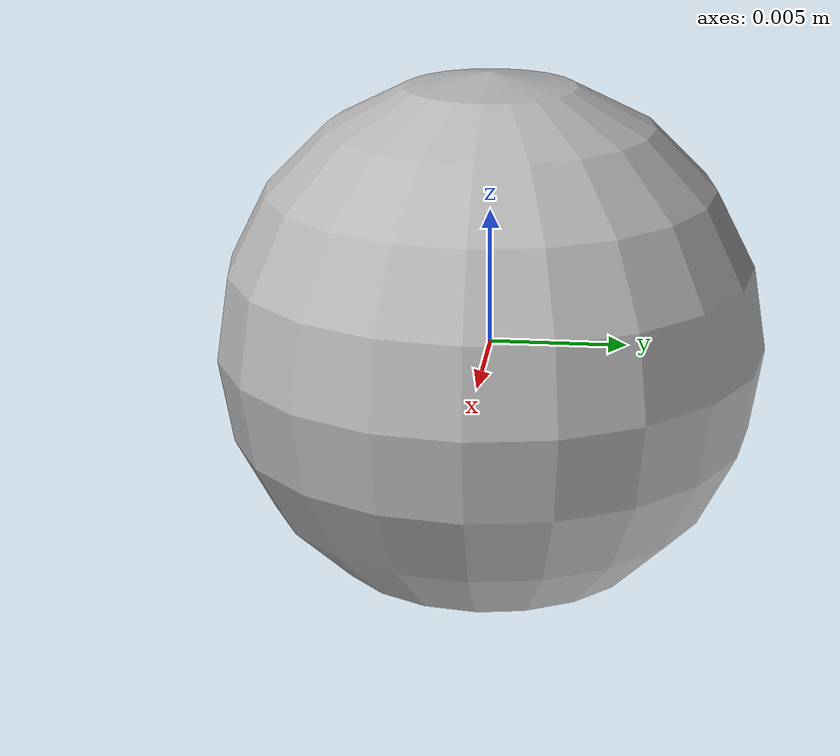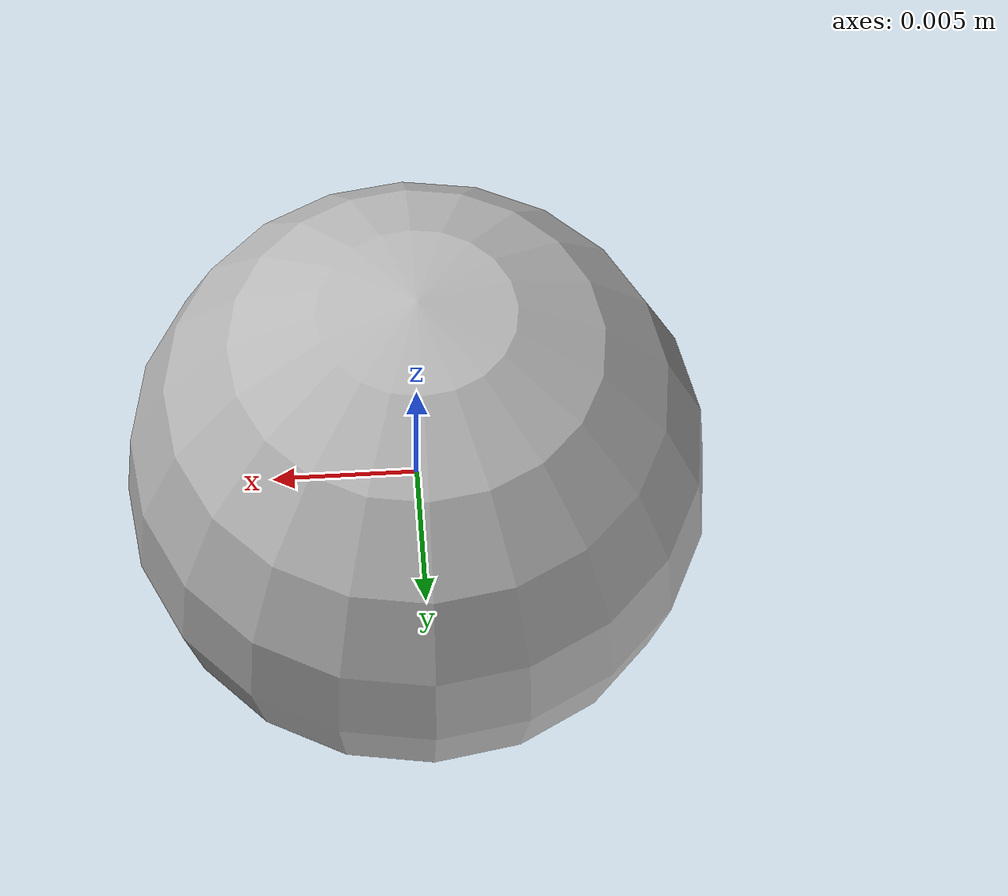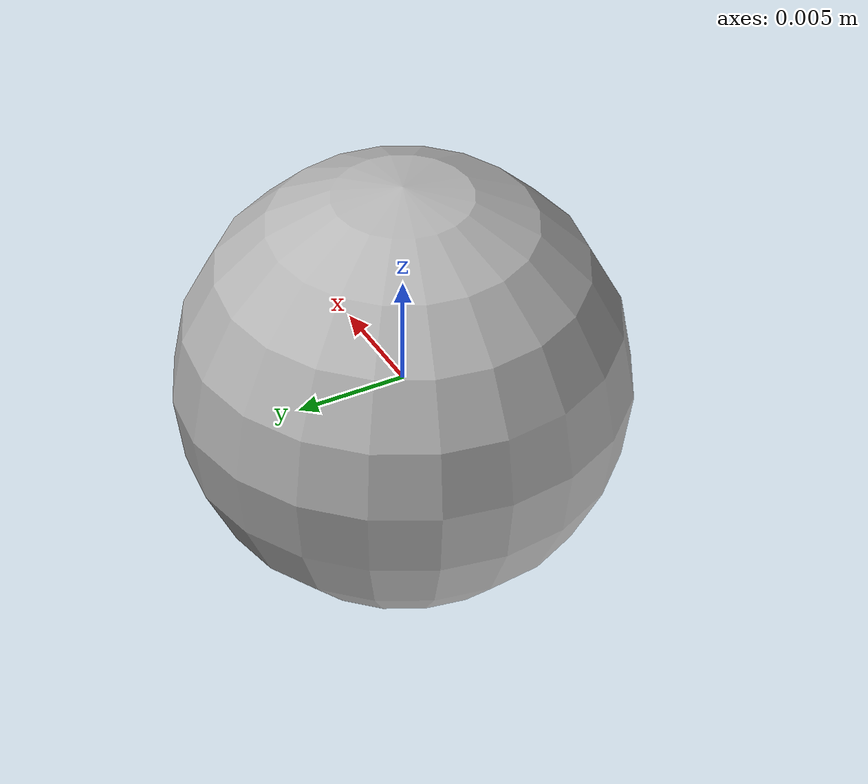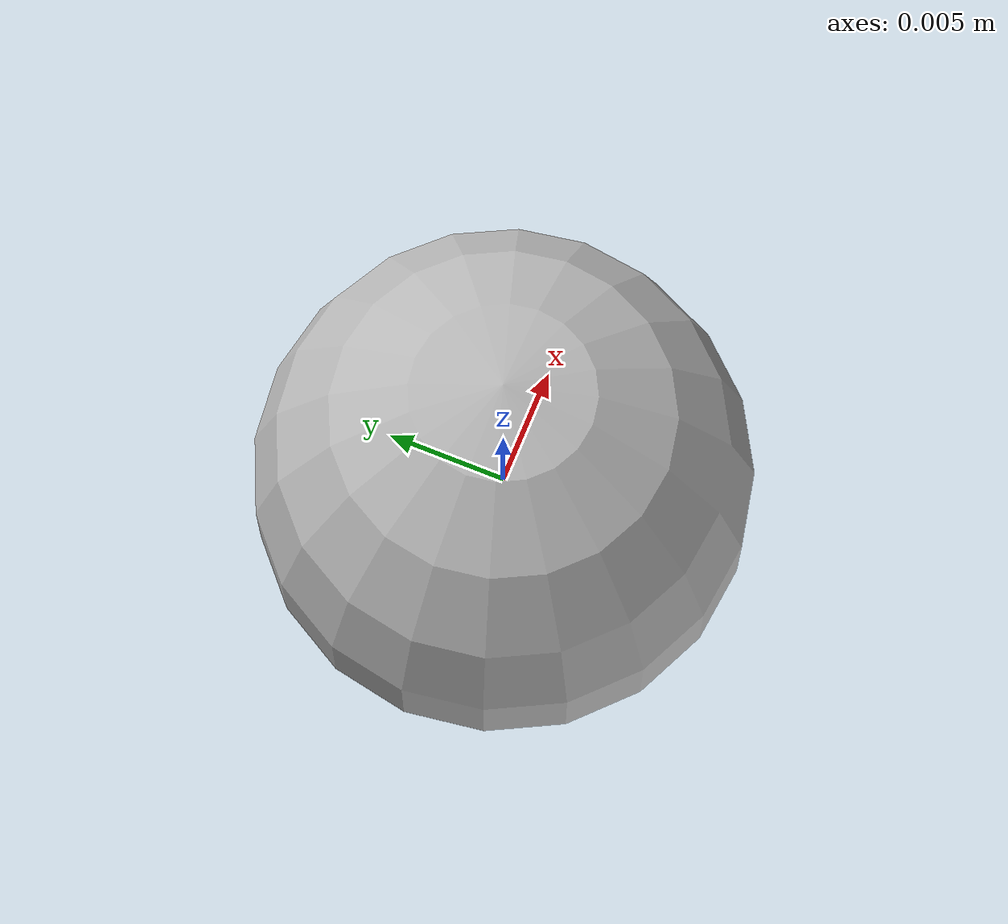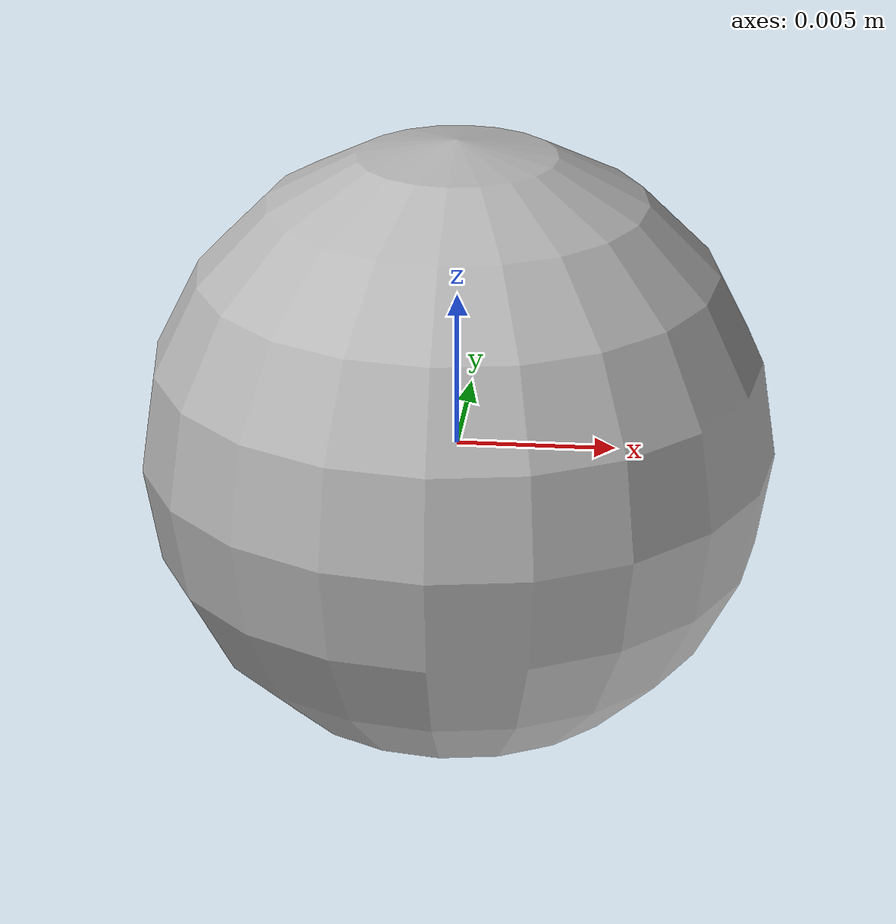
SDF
<?xml version="1.0" ?>
<sdf version="1.7">
  <world name="hand_world">

    <model name="simplified_hand">

      <!-- FINGER 1 -->
      <link name="fingertip_1">
      <inertial>
        <mass>0.2</mass>
        <inertia>
          <ixx>8e-6</ixx>
          <iyy>8e-6</iyy>
          <izz>8e-6</izz>
          <ixy>0</ixy>
          <ixz>0</ixz>
          <iyz>0</iyz>
        </inertia>
      </inertial>
        <visual name="visual">
          <geometry>
            <sphere>
              <radius>0.01</radius>
            </sphere>
          </geometry>
        </visual>
        <collision name="collision">
          <geometry>
            <sphere>
              <radius>0.01</radius>
            </sphere>
          </geometry>
          <drake:proximity_properties>
            <drake:mu_static>0.5</drake:mu_static>
            <drake:mu_dynamic>0.5</drake:mu_dynamic>
          </drake:proximity_properties>
        </collision>
      </link>

      <link name="base_link_1">
        <inertial>
          <mass>1.0e-6</mass>
          <inertia>
            <ixx>1.0e-6</ixx>
            <ixy>0</ixy>
            <ixz>0</ixz>
            <iyy>1.0e-6</iyy>
            <iyz>0</iyz>
            <izz>1.0e-6</izz>
          </inertia>
        </inertial>
      </link>
      <link name="link_x_1">
        <inertial>
          <mass>1.0e-6</mass>
          <inertia>
            <ixx>1.0e-6</ixx>
            <ixy>0</ixy>
            <ixz>0</ixz>
            <iyy>1.0e-6</iyy>
            <iyz>0</iyz>
            <izz>1.0e-6</izz>
          </inertia>
        </inertial>
      </link>
      <joint name="joint_x_1" type="prismatic">
        <parent>base_link_1</parent>
        <child>link_x_1</child>
        <axis>
          <xyz>1 0 0</xyz>
          <limit>
            <effort>5.0 </effort>
            <velocity>0.5</velocity>
            <lower> -0.05 </lower>
            <upper> 0.05 </upper>
          </limit>
        </axis>
      </joint>

      <link name="link_y_1">
      <inertial>
          <mass>1.0e-6</mass>
          <inertia>
            <ixx>1.0e-6</ixx>
            <ixy>0</ixy>
            <ixz>0</ixz>
            <iyy>1.0e-6</iyy>
            <iyz>0</iyz>
            <izz>1.0e-6</izz>
          </inertia>
        </inertial>
      </link>
      <joint name="joint_y_1" type="prismatic">
        <parent>link_x_1</parent>
        <child>link_y_1</child>
        <axis>
          <xyz>0 1 0</xyz>
           <limit>
            <effort>5.0 </effort>
            <velocity>0.5</velocity>
            <lower> -0.05 </lower>
            <upper> 0.05 </upper>
          </limit>
        </axis>
      </joint>

      <joint name="joint_z_1" type="prismatic">
        <parent>link_y_1</parent>
        <child>fingertip_1</child>
        <axis>
          <xyz>0 0 1</xyz>
          <limit>
          <effort>5.0 </effort>
          <velocity>0.5</velocity>
          <lower> -0.03 </lower>
          <upper> 0.08 </upper>
        </limit>
        </axis>
      </joint>

      <!-- FINGER 2 -->
      <link name="fingertip_2">
      <inertial>
        <mass>0.2</mass>
        <inertia>
          <ixx>8e-6</ixx>
          <iyy>8e-6</iyy>
          <izz>8e-6</izz>
          <ixy>0</ixy>
          <ixz>0</ixz>
          <iyz>0</iyz>
        </inertia>
      </inertial>
        <visual name="visual">
          <geometry>
            <sphere>
              <radius>0.01</radius>
            </sphere>
          </geometry>
        </visual>
        <collision name="collision">
          <geometry>
            <sphere>
              <radius>0.01</radius>
            </sphere>
          </geometry>
          <drake:proximity_properties>
            <drake:mu_static>0.5</drake:mu_static>
            <drake:mu_dynamic>0.5</drake:mu_dynamic>
          </drake:proximity_properties>
        </collision>
      </link>

      <link name="base_link_2">
        <inertial>
          <mass>1.0e-6</mass>
          <inertia>
            <ixx>1.0e-6</ixx>
            <ixy>0</ixy>
            <ixz>0</ixz>
            <iyy>1.0e-6</iyy>
            <iyz>0</iyz>
            <izz>1.0e-6</izz>
          </inertia>
        </inertial>
      </link>
      <link name="link_x_2">
        <inertial>
          <mass>1.0e-6</mass>
          <inertia>
            <ixx>1.0e-6</ixx>
            <ixy>0</ixy>
            <ixz>0</ixz>
            <iyy>1.0e-6</iyy>
            <iyz>0</iyz>
            <izz>1.0e-6</izz>
          </inertia>
        </inertial>
      </link>
      <joint name="joint_x_2" type="prismatic">
        <parent>base_link_2</parent>
        <child>link_x_2</child>
        <axis>
            <xyz>1 0 0</xyz>
          <limit>
            <effort>5.0 </effort>
            <velocity>0.5</velocity>
            <lower> -0.05 </lower>
            <upper> 0.05 </upper>
          </limit>
        </axis>
      </joint>

      <link name="link_y_2">
        <inertial>
          <mass>1.0e-6</mass>
          <inertia>
            <ixx>1.0e-6</ixx>
            <ixy>0</ixy>
            <ixz>0</ixz>
            <iyy>1.0e-6</iyy>
            <iyz>0</iyz>
            <izz>1.0e-6</izz>
          </inertia>
        </inertial>
      </link>
      <joint name="joint_y_2" type="prismatic">
        <parent>link_x_2</parent>
        <child>link_y_2</child>
        <axis>
          <xyz>0 1 0</xyz>
          <limit>
            <effort>5.0 </effort>
            <velocity>0.5</velocity>
            <lower> -0.05 </lower>
            <upper> 0.05 </upper>
          </limit>
        </axis>
      </joint>

      <joint name="joint_z_2" type="prismatic">
        <parent>link_y_2</parent>
        <child>fingertip_2</child>
        <axis>
          <xyz>0 0 1</xyz>
          <limit>
            <effort>5.0 </effort>
            <velocity>0.5</velocity>
            <lower> -0.03 </lower>
            <upper> 0.08 </upper>
          </limit>
        </axis>
      </joint>

      <!-- FINGER 3 -->
      <link name="fingertip_3">
      <inertial>
        <mass>0.2</mass>
        <inertia>
          <ixx>8e-6</ixx>
          <iyy>8e-6</iyy>
          <izz>8e-6</izz>
          <ixy>0</ixy>
          <ixz>0</ixz>
          <iyz>0</iyz>
        </inertia>
      </inertial>
        <visual name="visual">
          <geometry>
            <sphere>
              <radius>0.01</radius>
            </sphere>
          </geometry>
        </visual>
        <collision name="collision">
          <geometry>
            <sphere>
              <radius>0.01</radius>
            </sphere>
          </geometry>
          <drake:proximity_properties>
            <drake:mu_static>0.5</drake:mu_static>
            <drake:mu_dynamic>0.5</drake:mu_dynamic>
          </drake:proximity_properties>
        </collision>
      </link>

      <link name="base_link_3">
        <inertial>
          <mass>1.0e-6</mass>
          <inertia>
            <ixx>1.0e-6</ixx>
            <ixy>0</ixy>
            <ixz>0</ixz>
            <iyy>1.0e-6</iyy>
            <iyz>0</iyz>
            <izz>1.0e-6</izz>
          </inertia>
        </inertial>
      </link>
      <link name="link_x_3">
        <inertial>
          <mass>1.0e-6</mass>
          <inertia>
            <ixx>1.0e-6</ixx>
            <ixy>0</ixy>
            <ixz>0</ixz>
            <iyy>1.0e-6</iyy>
            <iyz>0</iyz>
            <izz>1.0e-6</izz>
          </inertia>
        </inertial>
      </link>
      <joint name="joint_x_3" type="prismatic">
        <parent>base_link_3</parent>
        <child>link_x_3</child>
        <axis>
          <xyz>1 0 0</xyz>
          <limit>
            <effort>5.0 </effort>
            <velocity>0.5</velocity>
            <lower> -0.05 </lower>
            <upper> 0.05 </upper>
          </limit>
        </axis>
      </joint>

      <link name="link_y_3">
        <inertial>
          <mass>1.0e-6</mass>
          <inertia>
            <ixx>1.0e-6</ixx>
            <ixy>0</ixy>
            <ixz>0</ixz>
            <iyy>1.0e-6</iyy>
            <iyz>0</iyz>
            <izz>1.0e-6</izz>
          </inertia>
        </inertial>
      </link>
      <joint name="joint_y_3" type="prismatic">
        <parent>link_x_3</parent>
        <child>link_y_3</child>
        <axis>
          <xyz>0 1 0</xyz>
          <limit>
            <effort>5.0 </effort>
            <velocity>0.5</velocity>
            <lower> -0.05 </lower>
            <upper> 0.05 </upper>
          </limit>
        </axis>
      </joint>

      <joint name="joint_z_3" type="prismatic">
        <parent>link_y_3</parent>
        <child>fingertip_3</child>
        <axis>
          <xyz>0 0 1</xyz>
          <limit>
            <effort>5.0 </effort>
            <velocity>0.5</velocity>
            <lower> -0.03 </lower>
            <upper> 0.08 </upper>
          </limit>
        </axis>
      </joint>

      <!-- FINGER 4 -->
      <link name="fingertip_4">
      <inertial>
        <mass>0.2</mass>
        <inertia>
          <ixx>8e-6</ixx>
          <iyy>8e-6</iyy>
          <izz>8e-6</izz>
          <ixy>0</ixy>
          <ixz>0</ixz>
          <iyz>0</iyz>
        </inertia>
      </inertial>
        <visual name="visual">
          <geometry>
            <sphere>
              <radius>0.01</radius>
            </sphere>
          </geometry>
        </visual>
        <collision name="collision">
          <geometry>
            <sphere>
              <radius>0.01</radius>
            </sphere>
          </geometry>
          <drake:proximity_properties>
            <drake:mu_static>0.5</drake:mu_static>
            <drake:mu_dynamic>0.5</drake:mu_dynamic>
          </drake:proximity_properties>
        </collision>
      </link>

      <link name="base_link_4">
        <inertial>
          <mass>1.0e-6</mass>
          <inertia>
            <ixx>1.0e-6</ixx>
            <ixy>0</ixy>
            <ixz>0</ixz>
            <iyy>1.0e-6</iyy>
            <iyz>0</iyz>
            <izz>1.0e-6</izz>
          </inertia>
        </inertial>
      </link>
      <link name="link_x_4">
        <inertial>
          <mass>1.0e-6</mass>
          <inertia>
            <ixx>1.0e-6</ixx>
            <ixy>0</ixy>
            <ixz>0</ixz>
            <iyy>1.0e-6</iyy>
            <iyz>0</iyz>
            <izz>1.0e-6</izz>
          </inertia>
        </inertial>
      </link>
      <joint name="joint_x_4" type="prismatic">
        <parent>base_link_4</parent>
        <child>link_x_4</child>
        <axis>
          <xyz>1 0 0</xyz>
          <limit>
            <effort>5.0 </effort>
            <velocity>0.5</velocity>
            <lower> -0.05 </lower>
            <upper> 0.05 </upper>
          </limit>
        </axis>
      </joint>

      <link name="link_y_4">
        <inertial>
          <mass>1.0e-6</mass>
          <inertia>
            <ixx>1.0e-6</ixx>
            <ixy>0</ixy>
            <ixz>0</ixz>
            <iyy>1.0e-6</iyy>
            <iyz>0</iyz>
            <izz>1.0e-6</izz>
          </inertia>
        </inertial>
      </link>
      <joint name="joint_y_4" type="prismatic">
        <parent>link_x_4</parent>
        <child>link_y_4</child>
        <axis>
          <xyz>0 1 0</xyz>
          <limit>
            <effort>5.0 </effort>
            <velocity>0.5</velocity>
            <lower> -0.05 </lower>
            <upper> 0.05 </upper>
          </limit>
        </axis>
      </joint>

      <joint name="joint_z_4" type="prismatic">
        <parent>link_y_4</parent>
        <child>fingertip_4</child>
        <axis>
          <xyz>0 0 1</xyz>
          <limit>
            <effort>5.0 </effort>
            <velocity>0.5</velocity>
            <lower> -0.03 </lower>
            <upper> 0.08 </upper>
          </limit>
        </axis>
      </joint>

    </model>
  </world>
</sdf>
